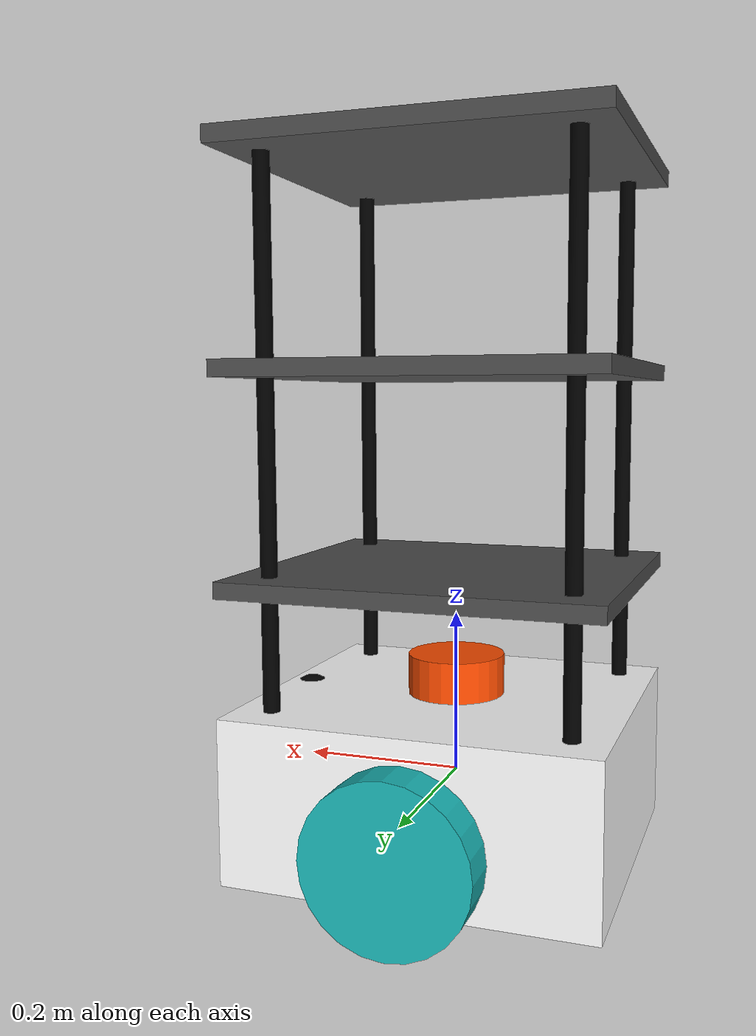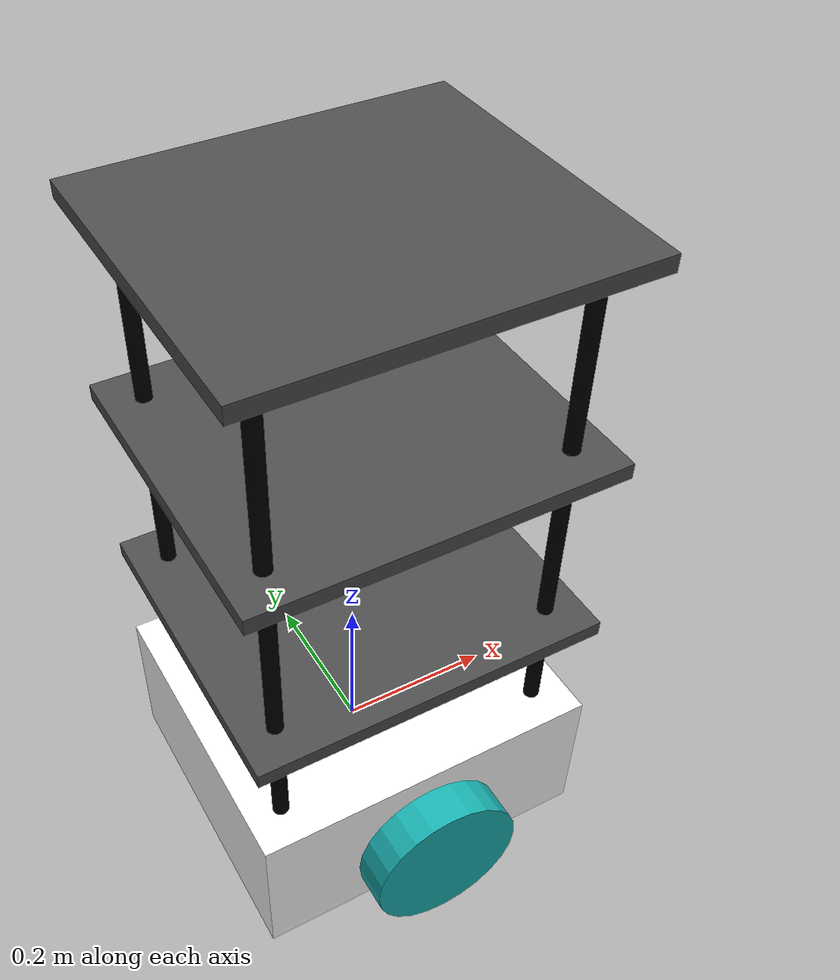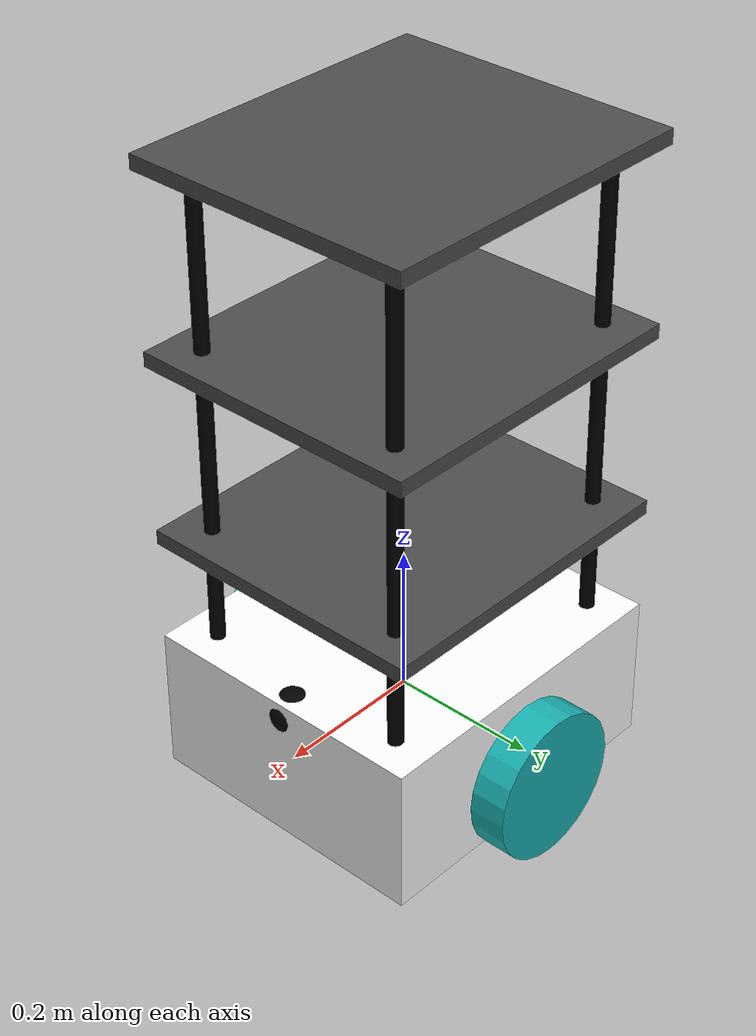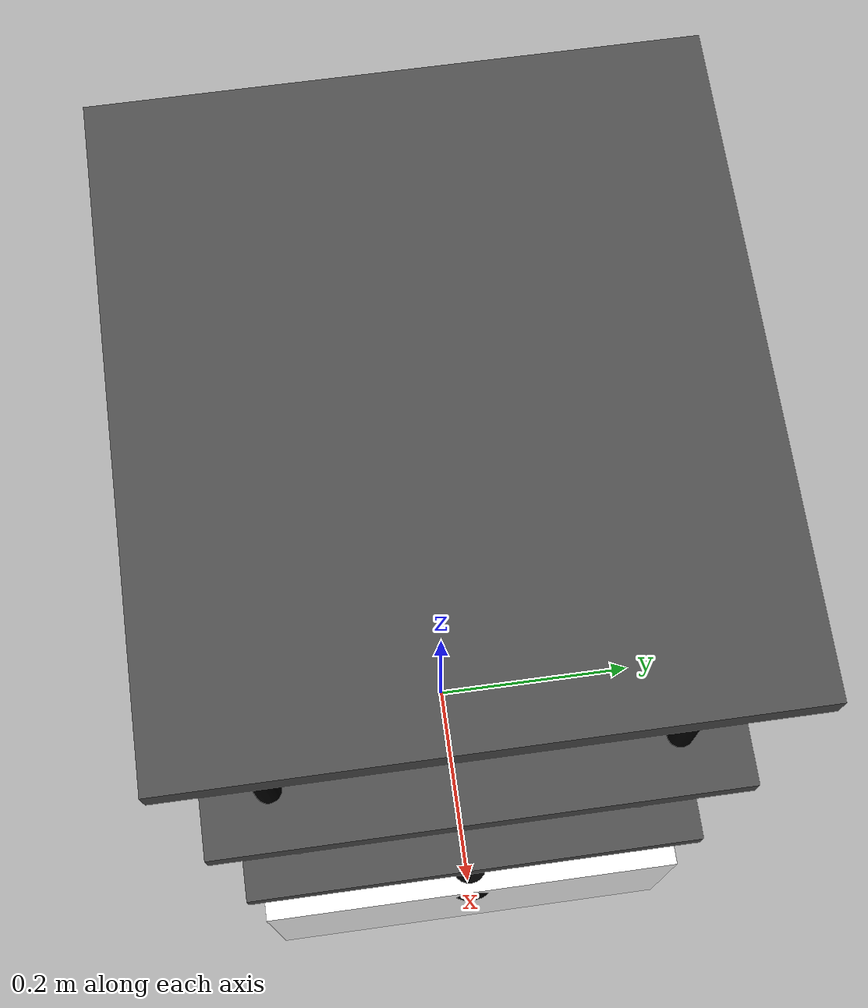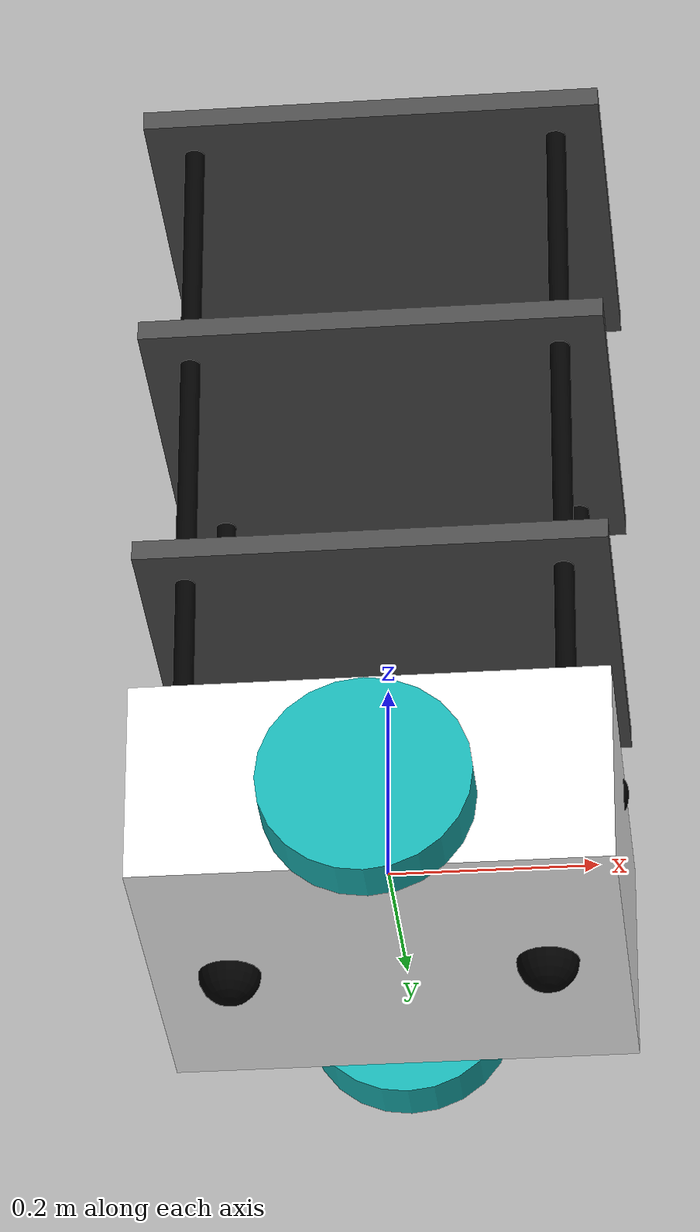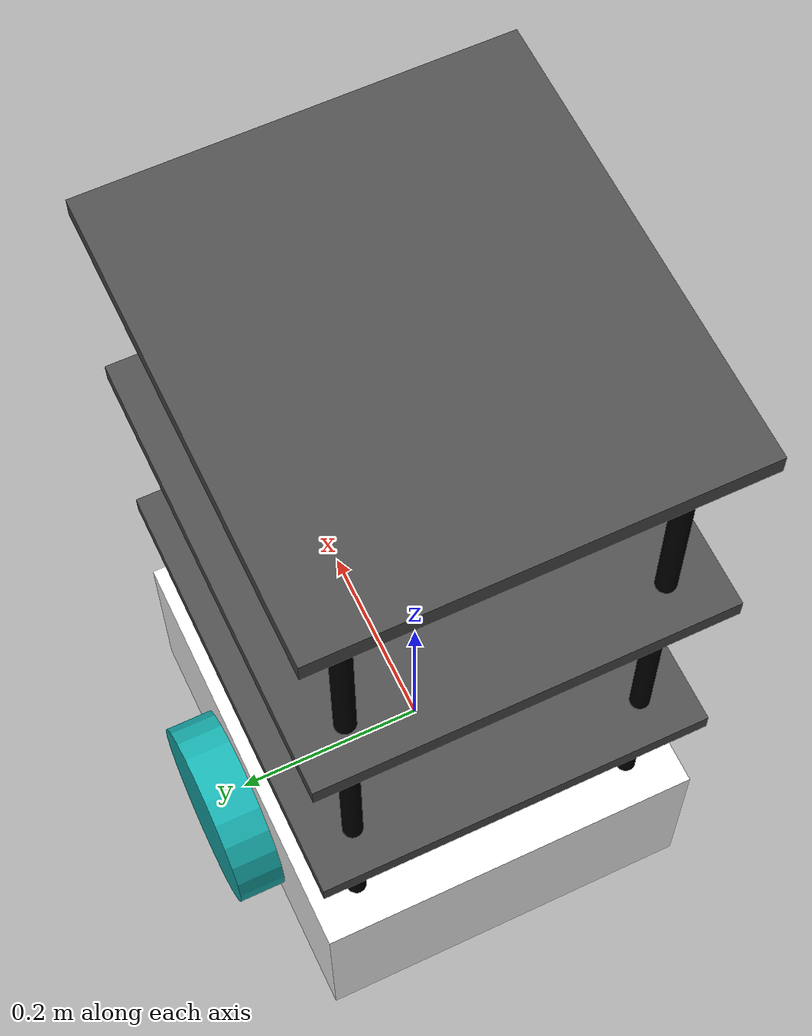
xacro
<?xml version="1.0"?>
<robot name="cafe_robot" xmlns:xacro="http://www.ros.org/wiki/xacro">

    <xacro:include filename="inertial_macros.xacro"/>
    <xacro:include filename="gazebo_plugins.xacro"/>

    <!--                Dimensions              -->
    <xacro:property name="chassis_length" value="0.45"/>
    <xacro:property name="chassis_width" value="0.4"/>
    <xacro:property name="chassis_height" value="0.2"/>
    <xacro:property name="wheel_thk" value="0.05"/>
    <xacro:property name="wheel_radius" value="0.1"/>
    <xacro:property name="lidar_radius" value="0.06"/>
    <xacro:property name="lidar_height" value="0.05"/>
    <xacro:property name="support_height" value="0.65"/>
    <xacro:property name="support_radius" value="0.01"/>
    <xacro:property name="support_pos_z" value="0.425"/>

    <!--                Base Link               -->
    <link name="base_link"/>

    <joint name="base_footprint_joint" type="fixed">
        <parent link="base_link"/>
        <child link="base_footprint"/>
        <origin xyz="0 0 0" rpy="0 0 0"/>
    </joint>

    <link name="base_footprint"/>

    <!--                Chassis Joint               -->
    <joint name="chassis_joint" type="fixed">
        <origin xyz="0.0 0.0 0.0" rpy="0.0 0.0 0.0"/>
        <parent link="base_link"/>
        <child link="chassis_link"/>
        <axis xyz="0.0 0.0 0.0"/>
    </joint>

    <link name="chassis_link">
        <xacro:box_inertia mass="2.5" x="${chassis_length}" y="${chassis_width}" z="${chassis_height}">
            <origin xyz="0 0 0" rpy="0 0 0"/>
        </xacro:box_inertia>
        <visual>
            <origin xyz="0.0 0.0 0.0" rpy="0.0 0.0 0.0"/>
            <geometry>
                <box size="${chassis_length} ${chassis_width} ${chassis_height}"/>
            </geometry>
            <material name="dark">
                <color rgba="1.0 1.0 1.0 1.0"/>
            </material>
        </visual>
        <collision>
            <origin xyz="0.0 0.0 0.0" rpy="0.0 0.0 0.0"/>
            <geometry>
                <box size="${chassis_length} ${chassis_width} ${chassis_height}"/>
            </geometry>
        </collision>
    </link>

    <!--                Left Wheel Joint               -->
    <joint name="wheel_L_joint" type="continuous">
        <origin xyz="0 0.225 -0.03" rpy="-1.57 0.0 0.0"/>
        <parent link="base_link"/>
        <child link="wheel_L_link"/>
        <axis xyz="0 0 1"/>
    </joint>

    <link name="wheel_L_link">
        <xacro:cylinder_inertia mass="0.3" length="${wheel_thk}" radius="${wheel_radius}">
            <origin xyz="0 0 0" rpy="0 0 0"/>
        </xacro:cylinder_inertia>
        <visual>
            <origin xyz="0.0 0.0 0.0" rpy="0.0 0.0 0.0"/>
            <geometry>
                <cylinder radius="${wheel_radius}" length="${wheel_thk}"/>
            </geometry>
            <material name="goat">
                <color rgba="0.1 0.7 0.7 1.0"/>
            </material>
        </visual>
        <collision>
            <origin xyz="0.0 0.0 0.0" rpy="0.0 0.0 0.0"/>
            <geometry>
                <cylinder radius="${wheel_radius}" length="${wheel_thk}"/>
            </geometry>
        </collision>
    </link>

     <!--           Right Wheel Joint              -->
     <joint name="wheel_R_joint" type="continuous">
        <origin xyz="0 -0.225 -0.03" rpy="1.57 0.0 0.0"/>
        <parent link="base_link"/>
        <child link="wheel_R_link"/>
        <axis xyz="0 0 -1"/>
    </joint>

    <link name="wheel_R_link">
        <xacro:cylinder_inertia mass="0.3" length="${wheel_thk}" radius="${wheel_radius}">
            <origin xyz="0 0 0" rpy="0 0 0"/>
        </xacro:cylinder_inertia>
        <visual>
            <origin xyz="0.0 0.0 0.0" rpy="0.0 0.0 0.0"/>
            <geometry>
                <cylinder radius="${wheel_radius}" length="${wheel_thk}"/>
            </geometry>
            <material name="goat">
                <color rgba="0.1 0.7 0.7 1.0"/>
            </material>
        </visual>
        <collision>
            <origin xyz="0.0 0.0 0.0" rpy="0.0 0.0 0.0"/>
            <geometry>
                <cylinder radius="${wheel_radius}" length="${wheel_thk}"/>
            </geometry>
        </collision>
    </link>

    <!--                Caster wheel joints & links              -->
    <joint name="caster_wheelF_joint" type="fixed">
        <parent link="chassis_link"/>
        <child link="caster_wheelF"/>
        <origin xyz="0.15 0 -0.1" rpy="0.0 0 0"/>
    </joint>

    <link name="caster_wheelF">
        <xacro:sphere_inertia mass="0.15" radius="0.03">
            <origin xyz="0 0 0" rpy="0 0 0"/>
        </xacro:sphere_inertia>
        <visual>
            <origin xyz="0.0 0.0 0.0" rpy=" 0.0 0.0 0.0"/>
            <geometry>
                <sphere radius="0.03"/>
            </geometry>
            <material name="black">
                <color rgba="0.0 0.0 0.0 1.0"/>
            </material>
        </visual>
        <collision>
            <origin xyz="0.0 0.0 0.0" rpy="0.0 0.0 0.0"/>
            <geometry>
                <sphere radius="0.03"/>
            </geometry>
        </collision>
    </link>

    <gazebo reference="caster_wheelF">
        <material>Gazebo/White</material>
        <mu1 value="0.001"/>
        <mu2 value="0.001"/>
    </gazebo>

    <joint name="caster_wheelB_joint" type="fixed">
        <parent link="chassis_link"/>
        <child link="caster_wheelB"/>
        <origin xyz="-0.15 0 -0.1" rpy="0.0 0 0"/>
    </joint>

    <link name="caster_wheelB">
        <xacro:sphere_inertia mass="0.15" radius="0.03">
            <origin xyz="0 0 0" rpy="0 0 0"/>
        </xacro:sphere_inertia>
        <visual>
            <origin xyz="0.0 0.0 0.0" rpy=" 0.0 0.0 0.0"/>
            <geometry>
                <sphere radius="0.03"/>
            </geometry>
            <material name="black">
                <color rgba="0.0 0.0 0.0 1.0"/>
            </material>
        </visual>
        <collision>
            <origin xyz="0.0 0.0 0.0" rpy="0.0 0.0 0.0"/>
            <geometry>
                <sphere radius="0.03"/>
            </geometry>
        </collision>
    </link>

    <gazebo reference="caster_wheelB">
        <material>Gazebo/White</material>
        <mu1 value="0.001"/>
        <mu2 value="0.001"/>
    </gazebo>

    <!--                Laser joint & link              -->
    <joint name="lidar_joint" type="fixed">
        <parent link="chassis_link"/>
        <child link="laser_frame"/>
        <origin xyz="0 0 0.125" rpy="0.0 0 0"/>
    </joint>

    <link name="laser_frame">
        <xacro:cylinder_inertia mass="0.200" length="${lidar_height}" radius="${lidar_radius}">
            <origin xyz="0 0 0" rpy="0 0 0"/>
        </xacro:cylinder_inertia>
        <visual>
            <origin xyz="0.0 0.0 0.0" rpy=" 0.0 0.0 0.0"/>
            <geometry>
                <cylinder radius="${lidar_radius}" length="${lidar_height}"/>
            </geometry>
            <material name="orange">
                <color rgba="1.0 0.3 0.0 1.0"/>
            </material>
        </visual>
        <collision>
            <origin xyz="0.0 0.0 0.0" rpy="0.0 0.0 0.0"/>
            <geometry>
                <cylinder radius="${lidar_radius}" length="${lidar_height}"/>
            </geometry>
        </collision>
    </link>

    <!--            Support Frames              -->
    <joint name="support1_joint" type="fixed">
        <parent link="chassis_link"/>
        <child link="support1"/>
        <origin xyz="0.18 0.15 ${support_pos_z}" rpy="0.0 0.0 0.0"/>
    </joint>

    <link name="support1">
        <xacro:cylinder_inertia mass="0.3" length="${support_height}" radius="${support_radius}">
            <origin xyz="0 0 0" rpy="0 0 0"/>
        </xacro:cylinder_inertia>
        <visual>
            <origin xyz="0.0 0.0 0.0" rpy="0.0 0.0 0.0"/>
            <geometry>
                <cylinder radius="${support_radius}" length="${support_height}"/>
            </geometry>
            <material name="black">
                <color rgba="0.0 0.0 0.0 1.0"/>
                <texture />
            </material>
        </visual>
        <collision>
            <origin xyz="0.0 0.0 0.0" rpy="0.0 0.0 0.0"/>
            <geometry>
                <cylinder radius="0.02" length="0.2"/>
            </geometry>
        </collision>
    </link>

    <joint name="support2_joint" type="fixed">
        <parent link="chassis_link"/>
        <child link="support2"/>
        <origin xyz="-0.18 -0.15 ${support_pos_z}" rpy="0.0 0.0 0.0"/>
    </joint>

    <link name="support2">
        <xacro:cylinder_inertia mass="0.3" length="${support_height}" radius="${support_radius}">
            <origin xyz="0 0 0" rpy="0 0 0"/>
        </xacro:cylinder_inertia>
        <visual>
            <origin xyz="0.0 0.0 0.0" rpy="0.0 0.0 0.0"/>
            <geometry>
                <cylinder radius="${support_radius}" length="${support_height}"/>
            </geometry>
            <material name="black">
                <color rgba="0.0 0.0 0.0 1.0"/>
                <texture />
            </material>
        </visual>
        <collision>
            <origin xyz="0.0 0.0 0.0" rpy="0.0 0.0 0.0"/>
            <geometry>
                <cylinder radius="0.02" length="0.2"/>
            </geometry>
        </collision>
    </link>

    <joint name="support3_joint" type="fixed">
        <parent link="chassis_link"/>
        <child link="support3"/>
        <origin xyz="-0.18 0.15 ${support_pos_z}" rpy="0.0 0.0 0.0"/>
    </joint>

    <link name="support3">
        <xacro:cylinder_inertia mass="0.3" length="${support_height}" radius="${support_radius}">
            <origin xyz="0 0 0" rpy="0 0 0"/>
        </xacro:cylinder_inertia>
        <visual>
            <origin xyz="0.0 0.0 0.0" rpy="0.0 0.0 0.0"/>
            <geometry>
                <cylinder radius="${support_radius}" length="${support_height}"/>
            </geometry>
            <material name="black">
                <color rgba="0.0 0.0 0.0 1.0"/>
                <texture />
            </material>
        </visual>
        <collision>
            <origin xyz="0.0 0.0 0.0" rpy="0.0 0.0 0.0"/>
            <geometry>
                <cylinder radius="0.02" length="0.2"/>
            </geometry>
        </collision>
    </link>

    <joint name="support4_joint" type="fixed">
        <parent link="chassis_link"/>
        <child link="support4"/>
        <origin xyz="0.18 -0.15 ${support_pos_z}" rpy="0.0 0.0 0.0"/>
    </joint>

    <link name="support4">
        <xacro:cylinder_inertia mass="0.3" length="${support_height}" radius="${support_radius}">
            <origin xyz="0 0 0" rpy="0 0 0"/>
        </xacro:cylinder_inertia>
        <visual>
            <origin xyz="0.0 0.0 0.0" rpy="0.0 0.0 0.0"/>
            <geometry>
                <cylinder radius="${support_radius}" length="${support_height}"/>
            </geometry>
            <material name="black">
                <color rgba="0.0 0.0 0.0 1.0"/>
                <texture />
            </material>
        </visual>
        <collision>
            <origin xyz="0.0 0.0 0.0" rpy="0.0 0.0 0.0"/>
            <geometry>
                <cylinder radius="0.02" length="0.2"/>
            </geometry>
        </collision>
    </link>

    <!--                Level Frames              -->
    <joint name="level1_joint" type="fixed">
        <parent link="chassis_link"/>
        <child link="level1"/>
        <origin xyz="0 0 0.25" rpy="0.0 0.0 0.0"/>
    </joint>

    <link name="level1">
        <xacro:cylinder_inertia mass="0.3" length="${wheel_thk}" radius="${wheel_radius}">
            <origin xyz="0 0 0" rpy="0 0 0"/>
        </xacro:cylinder_inertia>
        <visual>
            <origin xyz="0.0 0.0 0.0" rpy="0.0 0.0 0.0"/>
            <geometry>
                <box size = "${chassis_length} ${chassis_width} 0.02"/>
            </geometry>
            <material name="dark">
                <color rgba="0.3 0.3 0.3 1.0"/>
            </material>
        </visual>
        <collision>
            <origin xyz="0.0 0.0 0.0" rpy="0.0 0.0 0.0"/>
            <geometry>
                <box size = "0 0 0"/>
            </geometry>
        </collision>
    </link>

    <joint name="level2_joint" type="fixed">
        <parent link="chassis_link"/>
        <child link="level2"/>
        <origin xyz="0 0 0.5" rpy="0.0 0.0 0.0"/>
    </joint>

    <link name="level2">
        <xacro:cylinder_inertia mass="0.3" length="${wheel_thk}" radius="${wheel_radius}">
            <origin xyz="0 0 0" rpy="0 0 0"/>
        </xacro:cylinder_inertia>
        <visual>
            <origin xyz="0.0 0.0 0.0" rpy="0.0 0.0 0.0"/>
            <geometry>
                <box size = "${chassis_length} ${chassis_width} 0.02"/>
            </geometry>
            <material name="dark">
                <color rgba="0.3 0.3 0.3 1.0"/>
            </material>
        </visual>
        <collision>
            <origin xyz="0.0 0.0 0.0" rpy="0.0 0.0 0.0"/>
            <geometry>
                <box size = "0 0 0"/>
            </geometry>
        </collision>
    </link>

    <joint name="level3_joint" type="fixed">
        <parent link="chassis_link"/>
        <child link="level3"/>
        <origin xyz="0 0 0.75" rpy="0.0 0.0 0.0"/>
    </joint>

    <link name="level3">
        <xacro:cylinder_inertia mass="0.3" length="${wheel_thk}" radius="${wheel_radius}">
            <origin xyz="0 0 0" rpy="0 0 0"/>
        </xacro:cylinder_inertia>
        <visual>
            <origin xyz="0.0 0.0 0.0" rpy="0.0 0.0 0.0"/>
            <geometry>
                <box size = "${chassis_length} ${chassis_width} 0.02"/>
            </geometry>
           <material name="dark">
                <color rgba="0.3 0.3 0.3 1.0"/>
            </material>
        </visual>
        <collision>
            <origin xyz="0.0 0.0 0.0" rpy="0.0 0.0 0.0"/>
            <geometry>
                <box size = "0 0 0"/>
            </geometry>
        </collision>
    </link>

    <joint name="misc_joint" type="fixed">
        <parent link="base_link"/>
        <child link="misc_link"/>
        <origin xyz="0.2 0.0 0.075" rpy="0.0 0.0 0.0"/>
    </joint>

     <link name="misc_link">
        <xacro:sphere_inertia mass="0.05" radius="0.03">
            <origin xyz="0 0 0" rpy="0 0 0"/>
        </xacro:sphere_inertia>
        <visual>
            <origin xyz="0.0 0.0 0.0" rpy=" 0.0 0.0 0.0"/>
            <geometry>
                <sphere radius="0.03"/>
            </geometry>
            <material name="black">
                <color rgba="0.0 0.0 0.0 1.0"/>
            </material>
        </visual>
        <collision>
            <origin xyz="0.0 0.0 0.0" rpy="0.0 0.0 0.0"/>
            <geometry>
                <sphere radius="0.03"/>
            </geometry>
        </collision>
    </link>

</robot>

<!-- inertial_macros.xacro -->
<robot xmlns:xacro="http://www.ros.org/wiki/xacro" name="cafe_robot">

    <!--                Macro for Defining Inertia                  -->
    <xacro:macro name="sphere_inertia" params="mass radius *origin">
        <inertial>
            <xacro:insert_block name="origin"/>
            <mass value="${mass}" />
            <inertia ixx="${(2/5) * mass * (radius*radius)}" ixy="0.0" ixz="0.0"
                    iyy="${(2/5) * mass * (radius*radius)}" iyz="0.0"
                    izz="${(2/5) * mass * (radius*radius)}" />
        </inertial>
    </xacro:macro>

    <xacro:macro name="box_inertia" params="mass x y z *origin">
        <inertial>
            <xacro:insert_block name="origin"/>
            <mass value="${mass}" />
            <inertia ixx="${(1/12) * mass * (y*y+z*z)}" ixy="0.0" ixz="0.0"
                    iyy="${(1/12) * mass * (x*x+z*z)}" iyz="0.0"
                    izz="${(1/12) * mass * (x*x+y*y)}" />
        </inertial>
    </xacro:macro>

    <xacro:macro name="cylinder_inertia" params="mass length radius *origin">
        <inertial>
            <xacro:insert_block name="origin"/>
            <mass value="${mass}" />
            <inertia ixx="${(1/12) * mass * (3*radius*radius + length*length)}" ixy="0.0" ixz="0.0"
                    iyy="${(1/12) * mass * (3*radius*radius + length*length)}" iyz="0.0"
                    izz="${(1/2) * mass * (radius*radius)}" />
        </inertial>
    </xacro:macro>

</robot>
